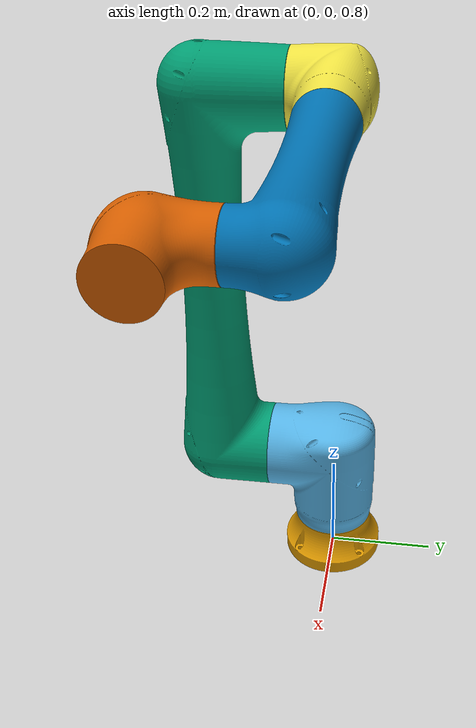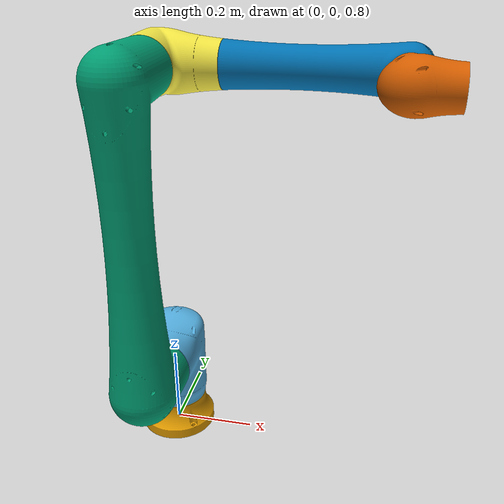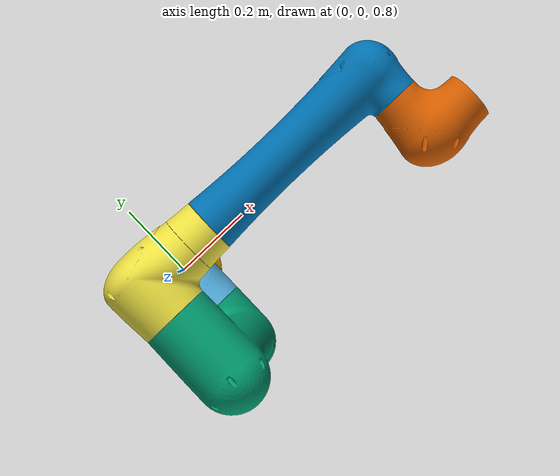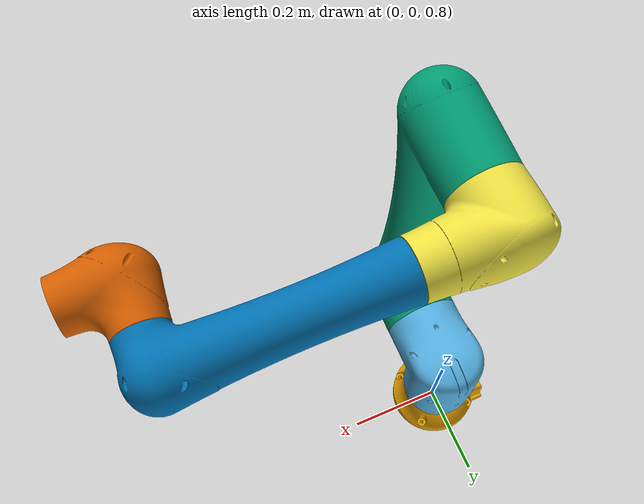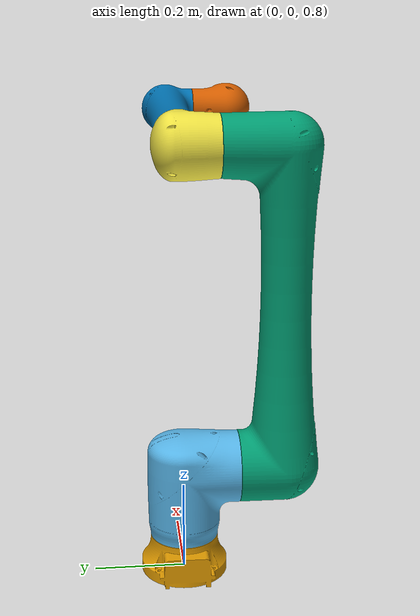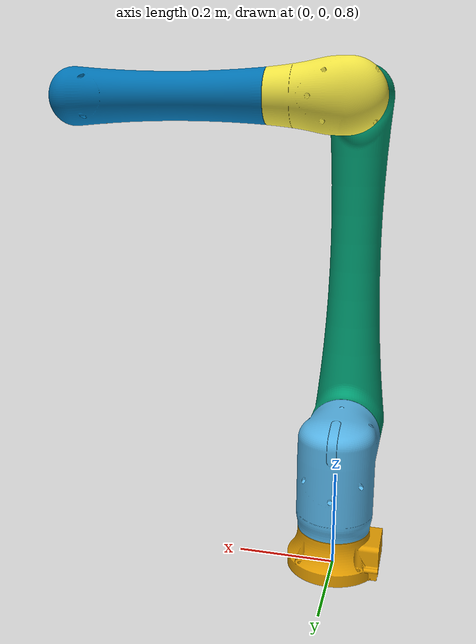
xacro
<?xml version="1.0" ?>
<robot name="7th_axe_robot" xmlns:xacro="http://wiki.ros.org/xacro">
  <xacro:include filename="$(find fanuc_resources)/urdf/common_materials.xacro"/>

  <!-- links: main serial chain  de fanuc-->
    <link name="base_link">
      <visual>
        <origin xyz="0 0 0" rpy="0 0 0"/>
        <geometry>
          <mesh filename="package://fanuc_crx10ia_support/meshes/crx10ial/visual/base_link.stl"/>
        </geometry>
        <xacro:material_fanuc_gray24 />
      </visual>
      <collision>
        <origin xyz="0 0 0" rpy="0 0 0"/>
        <geometry>
          <mesh filename="package://fanuc_crx10ia_support/meshes/crx10ial/collision/base_link.stl"/>
        </geometry>
      </collision>
    </link>
    <link name="link_1">
      <visual>
        <origin xyz="0 0 0" rpy="0 0 0"/>
        <geometry>
          <mesh filename="package://fanuc_crx10ia_support/meshes/crx10ial/visual/link_1.stl"/>
        </geometry>
        <xacro:material_fanuc_white />
      </visual>
      <collision>
        <origin xyz="0 0 0" rpy="0 0 0"/>
        <geometry>
          <mesh filename="package://fanuc_crx10ia_support/meshes/crx10ial/collision/link_1.stl"/>
        </geometry>
      </collision>
    </link>
    <link name="link_2">
      <visual>
        <origin xyz="0 0 0" rpy="0 0 0"/>
        <geometry>
          <mesh filename="package://fanuc_crx10ia_support/meshes/crx10ial/visual/link_2.stl"/>
        </geometry>
        <xacro:material_fanuc_white />
      </visual>
      <collision>
        <origin xyz="0 0 0" rpy="0 0 0"/>
        <geometry>
          <mesh filename="package://fanuc_crx10ia_support/meshes/crx10ial/collision/link_2.stl"/>
        </geometry>
      </collision>
    </link>
    <link name="link_3">
      <visual>
        <origin xyz="0 0 0" rpy="0 0 0"/>
        <geometry>
          <mesh filename="package://fanuc_crx10ia_support/meshes/crx10ial/visual/link_3.stl"/>
        </geometry>
        <xacro:material_fanuc_white />
      </visual>
      <collision>
        <origin xyz="0 0 0" rpy="0 0 0"/>
        <geometry>
          <mesh filename="package://fanuc_crx10ia_support/meshes/crx10ial/collision/link_3.stl"/>
        </geometry>
      </collision>
    </link>
    <link name="link_4">
      <visual>
        <origin xyz="0 0 0" rpy="0 0 0"/>
        <geometry>
          <mesh filename="package://fanuc_crx10ia_support/meshes/crx10ial/visual/link_4.stl"/>
        </geometry>
        <xacro:material_fanuc_white />
      </visual>
      <collision>
        <origin xyz="0 0 0" rpy="0 0 0"/>
        <geometry>
          <mesh filename="package://fanuc_crx10ia_support/meshes/crx10ial/collision/link_4.stl"/>
        </geometry>
      </collision>
    </link>
    <link name="link_5">
      <visual>
        <origin xyz="0 0 0" rpy="0 0 0"/>
        <geometry>
          <mesh filename="package://fanuc_crx10ia_support/meshes/crx10ial/visual/link_5.stl"/>
        </geometry>
        <xacro:material_fanuc_white />
      </visual>
      <collision>
        <origin xyz="0 0 0" rpy="0 0 0"/>
        <geometry>
          <mesh filename="package://fanuc_crx10ia_support/meshes/crx10ial/collision/link_5.stl"/>
        </geometry>
      </collision>
    </link>
    <!-- Link_6 original du Fanuc-->
    <!-- joints: main serial chain -->
    <joint name="joint_1" type="revolute">
      <origin xyz="0 0 0.245" rpy="0 0 0" />
      <parent link="base_link" />
      <child link="link_1" />
      <axis xyz="0 0 1" />
      <limit effort="0" lower="${radians(-180)}" upper="${radians(180)}" velocity="${radians(120)}" />
    </joint>
    <joint name="joint_2" type="revolute">
      <origin xyz="0 0 0" rpy="0 0 0" />
      <parent link="link_1" />
      <child link="link_2" />
      <axis xyz="0 1 0" />
      <limit effort="0" lower="${radians(-180)}" upper="${radians(180)}" velocity="${radians(120)}" />
    </joint>
    <joint name="joint_3" type="revolute">
      <origin xyz="0 0 0.710" rpy="0 0 0" />
      <parent link="link_2" />
      <child link="link_3" />
      <axis xyz="0 -1 0" />
      <limit effort="0" lower="${radians(-270)}" upper="${radians(270)}" velocity="${radians(180)}" />
    </joint>
    <joint name="joint_4" type="revolute">
      <origin xyz="0 0 0" rpy="0 0 0"/>
      <parent link="link_3"/>
      <child link="link_4"/>
      <axis xyz="-1 0 0"/>
      <limit effort="0" lower="${radians(-190)}" upper="${radians(190)}" velocity="${radians(180)}" />
    </joint>
    <joint name="joint_5" type="revolute">
      <origin xyz="0.540 -0.150 0" rpy="0 0 0"/>
      <parent link="link_4"/>
      <child link="link_5"/>
      <axis xyz="0 -1 0"/>
      <limit effort="0" lower="${radians(-180)}" upper="${radians(180)}" velocity="${radians(180)}" />
    </joint>
    <!-- Joint 6 original du robot-->

  <!-- Ajout du 7th joint -->
  <link name="husky"/>

  <joint name="husky_to_robot_base_plate" type="prismatic">
    <origin xyz="0.0 0.0 0.798396" rpy="0 0 0"/>
    <parent link="husky"/>
    <child  link="base_link"/>
    <axis xyz="0 0 1"/>
    <limit effort="4000.0" velocity="0.150" lower="0.0" upper="1.050"/>
    <!--TODO safety controller/-->
  </joint>

  <!--Define a new joint_6 TCP with festool  in one joint -->
  <link name="TCP"/>

  <joint name="joint_6" type="revolute">
      <origin xyz="0.160 -0.020860 0.141701" rpy="${pi} ${-pi/2.0} 0"/>
      <parent link="link_5"/>
      <child link="TCP"/>
      <axis xyz="-1 0 0"/>
      <limit effort="0" lower="${radians(-190)}" upper="${radians(190)}" velocity="${radians(180)}" />
    </joint>

</robot>
